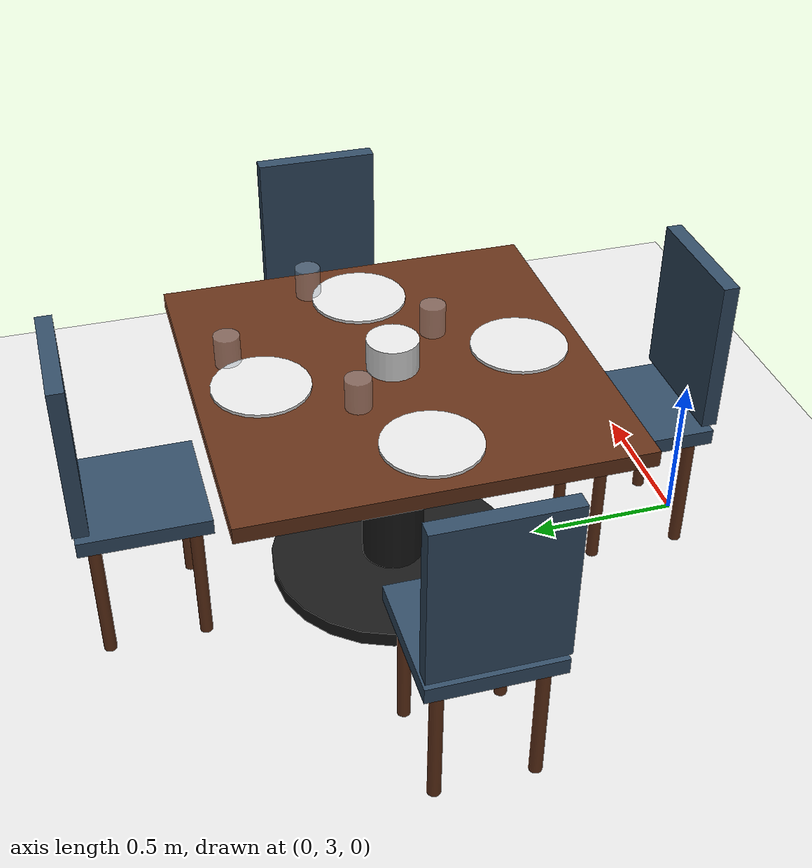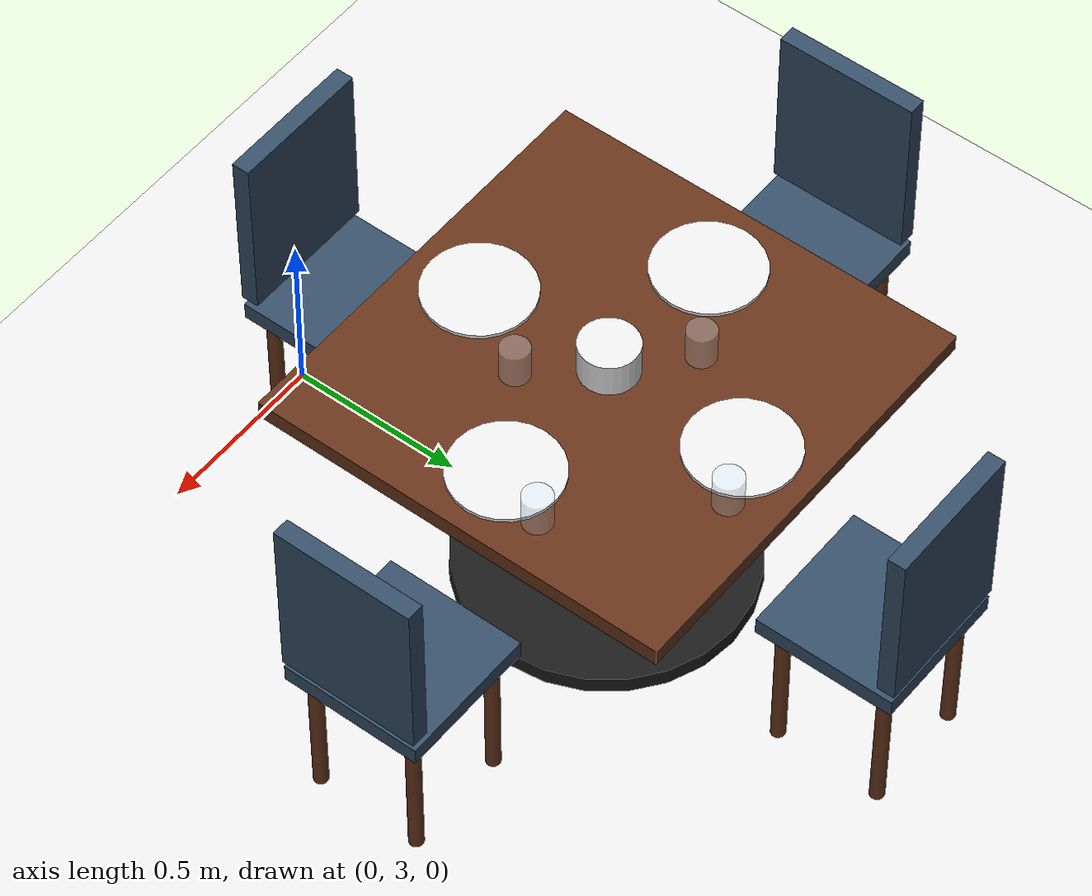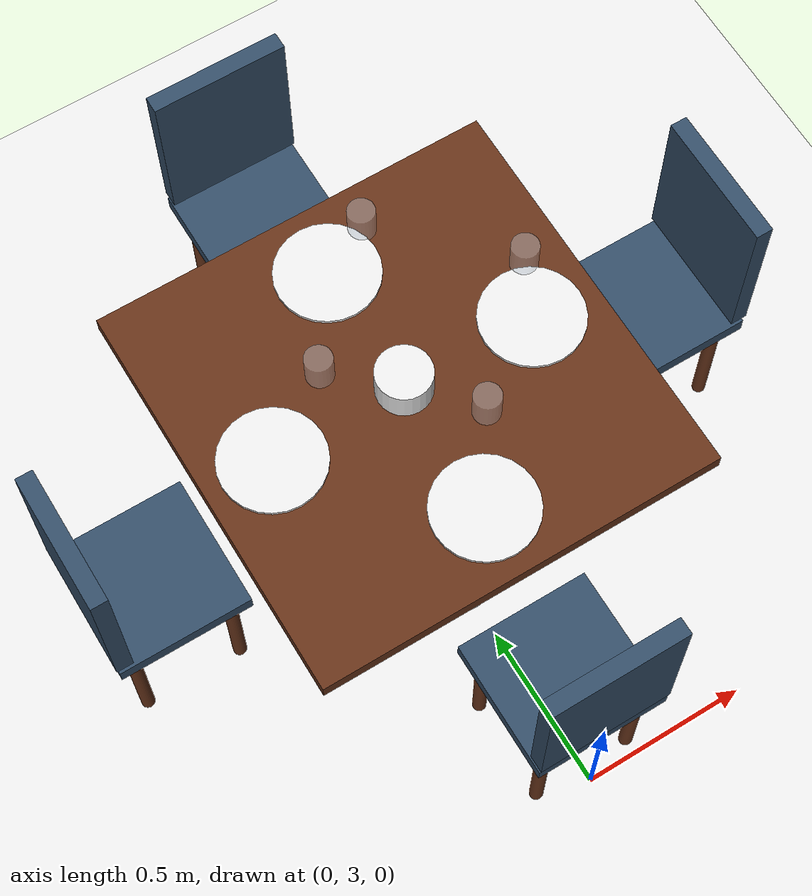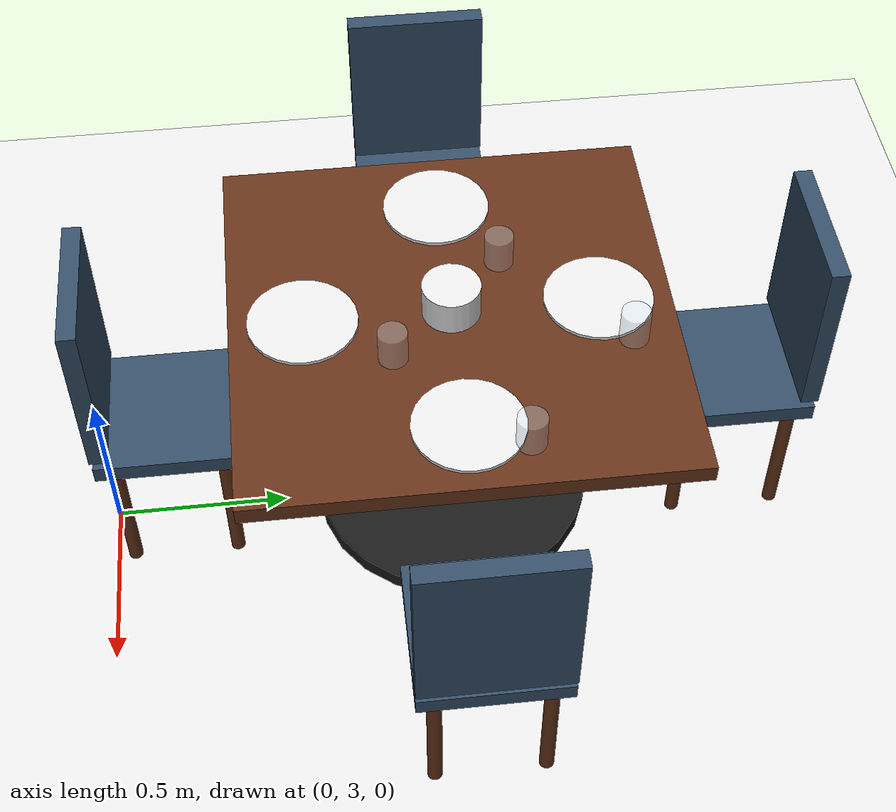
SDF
<sdf version="1.9">
 <world name="argo_restaurant">
  <model name="ground_plane">
   <static>true</static>
   <link name="link">
    <collision name="collision">
     <geometry><plane><normal>0 0 1</normal><size>100 100</size></plane></geometry>
    </collision>
    <visual name="visual">
     <geometry><plane><normal>0 0 1</normal><size>100 100</size></plane></geometry>
     <material>
      <ambient>0.9 0.9 0.9 1</ambient>
      <diffuse>0.9 0.9 0.9 1</diffuse>
      <specular>0.1 0.1 0.1 1</specular>
      <pbr><metal><roughness>0.1</roughness><metalness>0.0</metalness></metal></pbr>
     </material>
    </visual>
   </link>
  </model>
  <model name="table_7">
   <static>true</static>
   <link name="top_link">
    <pose>0.0 4.0 0.75 0 0 0</pose>
    <collision name="top_collision"><geometry><box><size>1.2 1.2 0.05</size></box></geometry></collision>
    <visual name="top_visual">
     <geometry><box><size>1.2 1.2 0.05</size></box></geometry>
     <material>
      <ambient>0.4 0.2 0.1 1</ambient>
      <diffuse>0.4 0.2 0.1 1</diffuse>
      <specular>0.1 0.1 0.1 1</specular>
      <pbr><metal><roughness>0.7</roughness><metalness>0.1</metalness></metal></pbr>
     </material>
    </visual>
   </link>
   <link name="leg_link">
    <pose>0.0 4.0 0.375 0 0 0</pose>
    <collision name="leg_collision">
     <geometry><cylinder><radius>0.1</radius><length>0.75</length></cylinder></geometry>
    </collision>
    <visual name="leg_visual">
     <geometry><cylinder><radius>0.1</radius><length>0.75</length></cylinder></geometry>
     <material>
      <ambient>0.1 0.1 0.1 1</ambient>
      <diffuse>0.1 0.1 0.1 1</diffuse>
      <specular>0.1 0.1 0.1 1</specular>
      <pbr><metal><roughness>0.5</roughness><metalness>0.0</metalness></metal></pbr>
     </material>
    </visual>
   </link>
   <link name="base_link">
    <pose>0.0 4.0 0.025 0 0 0</pose>
    <collision name="base_collision">
     <geometry><cylinder><radius>0.4</radius><length>0.05</length></cylinder></geometry>
    </collision>
    <visual name="base_visual">
     <geometry><cylinder><radius>0.4</radius><length>0.05</length></cylinder></geometry>
     <material>
      <ambient>0.1 0.1 0.1 1</ambient>
      <diffuse>0.1 0.1 0.1 1</diffuse>
      <specular>0.1 0.1 0.1 1</specular>
      <pbr><metal><roughness>0.5</roughness><metalness>0.0</metalness></metal></pbr>
     </material>
    </visual>
   </link>
   <link name="chair_0_seat_link">
    <pose>0.0 4.8 0.45 0 0 0</pose>
    <collision name="chair_0_seat_collision"><geometry><box><size>0.4 0.4 0.05</size></box></geometry></collision>
    <visual name="chair_0_seat_visual">
     <geometry><box><size>0.4 0.4 0.05</size></box></geometry>
     <material>
      <ambient>0.2 0.3 0.4 1</ambient>
      <diffuse>0.2 0.3 0.4 1</diffuse>
      <specular>0.1 0.1 0.1 1</specular>
      <pbr><metal><roughness>0.9</roughness><metalness>0.0</metalness></metal></pbr>
     </material>
    </visual>
   </link>
   <link name="chair_0_leg_-0.15_-0.15_link">
    <pose>-0.15 4.6499999999999995 0.225 0 0 0</pose>
    <collision name="chair_0_leg_-0.15_-0.15_collision">
     <geometry><cylinder><radius>0.02</radius><length>0.45</length></cylinder></geometry>
    </collision>
    <visual name="chair_0_leg_-0.15_-0.15_visual">
     <geometry><cylinder><radius>0.02</radius><length>0.45</length></cylinder></geometry>
     <material>
      <ambient>0.4 0.2 0.1 1</ambient>
      <diffuse>0.4 0.2 0.1 1</diffuse>
      <specular>0.1 0.1 0.1 1</specular>
      <pbr><metal><roughness>0.7</roughness><metalness>0.1</metalness></metal></pbr>
     </material>
    </visual>
   </link>
   <link name="chair_0_leg_0.15_-0.15_link">
    <pose>0.15 4.6499999999999995 0.225 0 0 0</pose>
    <collision name="chair_0_leg_0.15_-0.15_collision">
     <geometry><cylinder><radius>0.02</radius><length>0.45</length></cylinder></geometry>
    </collision>
    <visual name="chair_0_leg_0.15_-0.15_visual">
     <geometry><cylinder><radius>0.02</radius><length>0.45</length></cylinder></geometry>
     <material>
      <ambient>0.4 0.2 0.1 1</ambient>
      <diffuse>0.4 0.2 0.1 1</diffuse>
      <specular>0.1 0.1 0.1 1</specular>
      <pbr><metal><roughness>0.7</roughness><metalness>0.1</metalness></metal></pbr>
     </material>
    </visual>
   </link>
   <link name="chair_0_leg_-0.15_0.15_link">
    <pose>-0.15 4.95 0.225 0 0 0</pose>
    <collision name="chair_0_leg_-0.15_0.15_collision">
     <geometry><cylinder><radius>0.02</radius><length>0.45</length></cylinder></geometry>
    </collision>
    <visual name="chair_0_leg_-0.15_0.15_visual">
     <geometry><cylinder><radius>0.02</radius><length>0.45</length></cylinder></geometry>
     <material>
      <ambient>0.4 0.2 0.1 1</ambient>
      <diffuse>0.4 0.2 0.1 1</diffuse>
      <specular>0.1 0.1 0.1 1</specular>
      <pbr><metal><roughness>0.7</roughness><metalness>0.1</metalness></metal></pbr>
     </material>
    </visual>
   </link>
   <link name="chair_0_leg_0.15_0.15_link">
    <pose>0.15 4.95 0.225 0 0 0</pose>
    <collision name="chair_0_leg_0.15_0.15_collision">
     <geometry><cylinder><radius>0.02</radius><length>0.45</length></cylinder></geometry>
    </collision>
    <visual name="chair_0_leg_0.15_0.15_visual">
     <geometry><cylinder><radius>0.02</radius><length>0.45</length></cylinder></geometry>
     <material>
      <ambient>0.4 0.2 0.1 1</ambient>
      <diffuse>0.4 0.2 0.1 1</diffuse>
      <specular>0.1 0.1 0.1 1</specular>
      <pbr><metal><roughness>0.7</roughness><metalness>0.1</metalness></metal></pbr>
     </material>
    </visual>
   </link>
   <link name="chair_0_back_link">
    <pose>0.0 4.9799999999999995 0.75 0 0 0</pose>
    <collision name="chair_0_back_collision"><geometry><box><size>0.4 0.05 0.5</size></box></geometry></collision>
    <visual name="chair_0_back_visual">
     <geometry><box><size>0.4 0.05 0.5</size></box></geometry>
     <material>
      <ambient>0.2 0.3 0.4 1</ambient>
      <diffuse>0.2 0.3 0.4 1</diffuse>
      <specular>0.1 0.1 0.1 1</specular>
      <pbr><metal><roughness>0.9</roughness><metalness>0.0</metalness></metal></pbr>
     </material>
    </visual>
   </link>
   <link name="chair_1_seat_link">
    <pose>0.0 3.2 0.45 0 0 3.1415</pose>
    <collision name="chair_1_seat_collision"><geometry><box><size>0.4 0.4 0.05</size></box></geometry></collision>
    <visual name="chair_1_seat_visual">
     <geometry><box><size>0.4 0.4 0.05</size></box></geometry>
     <material>
      <ambient>0.2 0.3 0.4 1</ambient>
      <diffuse>0.2 0.3 0.4 1</diffuse>
      <specular>0.1 0.1 0.1 1</specular>
      <pbr><metal><roughness>0.9</roughness><metalness>0.0</metalness></metal></pbr>
     </material>
    </visual>
   </link>
   <link name="chair_1_leg_-0.15_-0.15_link">
    <pose>-0.15 3.0500000000000003 0.225 0 0 0</pose>
    <collision name="chair_1_leg_-0.15_-0.15_collision">
     <geometry><cylinder><radius>0.02</radius><length>0.45</length></cylinder></geometry>
    </collision>
    <visual name="chair_1_leg_-0.15_-0.15_visual">
     <geometry><cylinder><radius>0.02</radius><length>0.45</length></cylinder></geometry>
     <material>
      <ambient>0.4 0.2 0.1 1</ambient>
      <diffuse>0.4 0.2 0.1 1</diffuse>
      <specular>0.1 0.1 0.1 1</specular>
      <pbr><metal><roughness>0.7</roughness><metalness>0.1</metalness></metal></pbr>
     </material>
    </visual>
   </link>
   <link name="chair_1_leg_0.15_-0.15_link">
    <pose>0.15 3.0500000000000003 0.225 0 0 0</pose>
    <collision name="chair_1_leg_0.15_-0.15_collision">
     <geometry><cylinder><radius>0.02</radius><length>0.45</length></cylinder></geometry>
    </collision>
    <visual name="chair_1_leg_0.15_-0.15_visual">
     <geometry><cylinder><radius>0.02</radius><length>0.45</length></cylinder></geometry>
     <material>
      <ambient>0.4 0.2 0.1 1</ambient>
      <diffuse>0.4 0.2 0.1 1</diffuse>
      <specular>0.1 0.1 0.1 1</specular>
      <pbr><metal><roughness>0.7</roughness><metalness>0.1</metalness></metal></pbr>
     </material>
    </visual>
   </link>
   <link name="chair_1_leg_-0.15_0.15_link">
    <pose>-0.15 3.35 0.225 0 0 0</pose>
    <collision name="chair_1_leg_-0.15_0.15_collision">
     <geometry><cylinder><radius>0.02</radius><length>0.45</length></cylinder></geometry>
    </collision>
    <visual name="chair_1_leg_-0.15_0.15_visual">
     <geometry><cylinder><radius>0.02</radius><length>0.45</length></cylinder></geometry>
     <material>
      <ambient>0.4 0.2 0.1 1</ambient>
      <diffuse>0.4 0.2 0.1 1</diffuse>
      <specular>0.1 0.1 0.1 1</specular>
      <pbr><metal><roughness>0.7</roughness><metalness>0.1</metalness></metal></pbr>
     </material>
    </visual>
   </link>
   <link name="chair_1_leg_0.15_0.15_link">
    <pose>0.15 3.35 0.225 0 0 0</pose>
    <collision name="chair_1_leg_0.15_0.15_collision">
     <geometry><cylinder><radius>0.02</radius><length>0.45</length></cylinder></geometry>
    </collision>
    <visual name="chair_1_leg_0.15_0.15_visual">
     <geometry><cylinder><radius>0.02</radius><length>0.45</length></cylinder></geometry>
     <material>
      <ambient>0.4 0.2 0.1 1</ambient>
      <diffuse>0.4 0.2 0.1 1</diffuse>
      <specular>0.1 0.1 0.1 1</specular>
      <pbr><metal><roughness>0.7</roughness><metalness>0.1</metalness></metal></pbr>
     </material>
    </visual>
   </link>
   <link name="chair_1_back_link">
    <pose>-1.6677646138888247e-05 3.020000000772622 0.75 0 0 3.1415</pose>
    <collision name="chair_1_back_collision"><geometry><box><size>0.4 0.05 0.5</size></box></geometry></collision>
    <visual name="chair_1_back_visual">
     <geometry><box><size>0.4 0.05 0.5</size></box></geometry>
     <material>
      <ambient>0.2 0.3 0.4 1</ambient>
      <diffuse>0.2 0.3 0.4 1</diffuse>
      <specular>0.1 0.1 0.1 1</specular>
      <pbr><metal><roughness>0.9</roughness><metalness>0.0</metalness></metal></pbr>
     </material>
    </visual>
   </link>
   <link name="chair_2_seat_link">
    <pose>0.8 4.0 0.45 0 0 -1.5707</pose>
    <collision name="chair_2_seat_collision"><geometry><box><size>0.4 0.4 0.05</size></box></geometry></collision>
    <visual name="chair_2_seat_visual">
     <geometry><box><size>0.4 0.4 0.05</size></box></geometry>
     <material>
      <ambient>0.2 0.3 0.4 1</ambient>
      <diffuse>0.2 0.3 0.4 1</diffuse>
      <specular>0.1 0.1 0.1 1</specular>
      <pbr><metal><roughness>0.9</roughness><metalness>0.0</metalness></metal></pbr>
     </material>
    </visual>
   </link>
   <link name="chair_2_leg_-0.15_-0.15_link">
    <pose>0.65 3.85 0.225 0 0 0</pose>
    <collision name="chair_2_leg_-0.15_-0.15_collision">
     <geometry><cylinder><radius>0.02</radius><length>0.45</length></cylinder></geometry>
    </collision>
    <visual name="chair_2_leg_-0.15_-0.15_visual">
     <geometry><cylinder><radius>0.02</radius><length>0.45</length></cylinder></geometry>
     <material>
      <ambient>0.4 0.2 0.1 1</ambient>
      <diffuse>0.4 0.2 0.1 1</diffuse>
      <specular>0.1 0.1 0.1 1</specular>
      <pbr><metal><roughness>0.7</roughness><metalness>0.1</metalness></metal></pbr>
     </material>
    </visual>
   </link>
   <link name="chair_2_leg_0.15_-0.15_link">
    <pose>0.9500000000000001 3.85 0.225 0 0 0</pose>
    <collision name="chair_2_leg_0.15_-0.15_collision">
     <geometry><cylinder><radius>0.02</radius><length>0.45</length></cylinder></geometry>
    </collision>
    <visual name="chair_2_leg_0.15_-0.15_visual">
     <geometry><cylinder><radius>0.02</radius><length>0.45</length></cylinder></geometry>
     <material>
      <ambient>0.4 0.2 0.1 1</ambient>
      <diffuse>0.4 0.2 0.1 1</diffuse>
      <specular>0.1 0.1 0.1 1</specular>
      <pbr><metal><roughness>0.7</roughness><metalness>0.1</metalness></metal></pbr>
     </material>
    </visual>
   </link>
   <link name="chair_2_leg_-0.15_0.15_link">
    <pose>0.65 4.15 0.225 0 0 0</pose>
    <collision name="chair_2_leg_-0.15_0.15_collision">
     <geometry><cylinder><radius>0.02</radius><length>0.45</length></cylinder></geometry>
    </collision>
    <visual name="chair_2_leg_-0.15_0.15_visual">
     <geometry><cylinder><radius>0.02</radius><length>0.45</length></cylinder></geometry>
     <material>
      <ambient>0.4 0.2 0.1 1</ambient>
      <diffuse>0.4 0.2 0.1 1</diffuse>
      <specular>0.1 0.1 0.1 1</specular>
      <pbr><metal><roughness>0.7</roughness><metalness>0.1</metalness></metal></pbr>
     </material>
    </visual>
   </link>
   <link name="chair_2_leg_0.15_0.15_link">
    <pose>0.9500000000000001 4.15 0.225 0 0 0</pose>
    <collision name="chair_2_leg_0.15_0.15_collision">
     <geometry><cylinder><radius>0.02</radius><length>0.45</length></cylinder></geometry>
    </collision>
    <visual name="chair_2_leg_0.15_0.15_visual">
     <geometry><cylinder><radius>0.02</radius><length>0.45</length></cylinder></geometry>
     <material>
      <ambient>0.4 0.2 0.1 1</ambient>
      <diffuse>0.4 0.2 0.1 1</diffuse>
      <specular>0.1 0.1 0.1 1</specular>
      <pbr><metal><roughness>0.7</roughness><metalness>0.1</metalness></metal></pbr>
     </material>
    </visual>
   </link>
   <link name="chair_2_back_link">
    <pose>0.9799999991649034 4.000017338823055 0.75 0 0 -1.5707</pose>
    <collision name="chair_2_back_collision"><geometry><box><size>0.4 0.05 0.5</size></box></geometry></collision>
    <visual name="chair_2_back_visual">
     <geometry><box><size>0.4 0.05 0.5</size></box></geometry>
     <material>
      <ambient>0.2 0.3 0.4 1</ambient>
      <diffuse>0.2 0.3 0.4 1</diffuse>
      <specular>0.1 0.1 0.1 1</specular>
      <pbr><metal><roughness>0.9</roughness><metalness>0.0</metalness></metal></pbr>
     </material>
    </visual>
   </link>
   <link name="chair_3_seat_link">
    <pose>-0.8 4.0 0.45 0 0 1.5707</pose>
    <collision name="chair_3_seat_collision"><geometry><box><size>0.4 0.4 0.05</size></box></geometry></collision>
    <visual name="chair_3_seat_visual">
     <geometry><box><size>0.4 0.4 0.05</size></box></geometry>
     <material>
      <ambient>0.2 0.3 0.4 1</ambient>
      <diffuse>0.2 0.3 0.4 1</diffuse>
      <specular>0.1 0.1 0.1 1</specular>
      <pbr><metal><roughness>0.9</roughness><metalness>0.0</metalness></metal></pbr>
     </material>
    </visual>
   </link>
   <link name="chair_3_leg_-0.15_-0.15_link">
    <pose>-0.9500000000000001 3.85 0.225 0 0 0</pose>
    <collision name="chair_3_leg_-0.15_-0.15_collision">
     <geometry><cylinder><radius>0.02</radius><length>0.45</length></cylinder></geometry>
    </collision>
    <visual name="chair_3_leg_-0.15_-0.15_visual">
     <geometry><cylinder><radius>0.02</radius><length>0.45</length></cylinder></geometry>
     <material>
      <ambient>0.4 0.2 0.1 1</ambient>
      <diffuse>0.4 0.2 0.1 1</diffuse>
      <specular>0.1 0.1 0.1 1</specular>
      <pbr><metal><roughness>0.7</roughness><metalness>0.1</metalness></metal></pbr>
     </material>
    </visual>
   </link>
   <link name="chair_3_leg_0.15_-0.15_link">
    <pose>-0.65 3.85 0.225 0 0 0</pose>
    <collision name="chair_3_leg_0.15_-0.15_collision">
     <geometry><cylinder><radius>0.02</radius><length>0.45</length></cylinder></geometry>
    </collision>
    <visual name="chair_3_leg_0.15_-0.15_visual">
     <geometry><cylinder><radius>0.02</radius><length>0.45</length></cylinder></geometry>
     <material>
      <ambient>0.4 0.2 0.1 1</ambient>
      <diffuse>0.4 0.2 0.1 1</diffuse>
      <specular>0.1 0.1 0.1 1</specular>
      <pbr><metal><roughness>0.7</roughness><metalness>0.1</metalness></metal></pbr>
     </material>
    </visual>
   </link>
   <link name="chair_3_leg_-0.15_0.15_link">
    <pose>-0.9500000000000001 4.15 0.225 0 0 0</pose>
    <collision name="chair_3_leg_-0.15_0.15_collision">
     <geometry><cylinder><radius>0.02</radius><length>0.45</length></cylinder></geometry>
    </collision>
    <visual name="chair_3_leg_-0.15_0.15_visual">
     <geometry><cylinder><radius>0.02</radius><length>0.45</length></cylinder></geometry>
     <material>
      <ambient>0.4 0.2 0.1 1</ambient>
      <diffuse>0.4 0.2 0.1 1</diffuse>
      <specular>0.1 0.1 0.1 1</specular>
      <pbr><metal><roughness>0.7</roughness><metalness>0.1</metalness></metal></pbr>
     </material>
    </visual>
   </link>
   <link name="chair_3_leg_0.15_0.15_link">
    <pose>-0.65 4.15 0.225 0 0 0</pose>
    <collision name="chair_3_leg_0.15_0.15_collision">
     <geometry><cylinder><radius>0.02</radius><length>0.45</length></cylinder></geometry>
    </collision>
    <visual name="chair_3_leg_0.15_0.15_visual">
     <geometry><cylinder><radius>0.02</radius><length>0.45</length></cylinder></geometry>
     <material>
      <ambient>0.4 0.2 0.1 1</ambient>
      <diffuse>0.4 0.2 0.1 1</diffuse>
      <specular>0.1 0.1 0.1 1</specular>
      <pbr><metal><roughness>0.7</roughness><metalness>0.1</metalness></metal></pbr>
     </material>
    </visual>
   </link>
   <link name="chair_3_back_link">
    <pose>-0.9799999991649034 4.000017338823055 0.75 0 0 1.5707</pose>
    <collision name="chair_3_back_collision"><geometry><box><size>0.4 0.05 0.5</size></box></geometry></collision>
    <visual name="chair_3_back_visual">
     <geometry><box><size>0.4 0.05 0.5</size></box></geometry>
     <material>
      <ambient>0.2 0.3 0.4 1</ambient>
      <diffuse>0.2 0.3 0.4 1</diffuse>
      <specular>0.1 0.1 0.1 1</specular>
      <pbr><metal><roughness>0.9</roughness><metalness>0.0</metalness></metal></pbr>
     </material>
    </visual>
   </link>
   <link name="centerpiece_pot_link">
    <pose>0.0 4.0 0.825 0 0 0</pose>
    <collision name="centerpiece_pot_collision">
     <geometry><cylinder><radius>0.08</radius><length>0.1</length></cylinder></geometry>
    </collision>
    <visual name="centerpiece_pot_visual">
     <geometry><cylinder><radius>0.08</radius><length>0.1</length></cylinder></geometry>
     <material>
      <ambient>0.9 0.9 0.9 1</ambient>
      <diffuse>0.9 0.9 0.9 1</diffuse>
      <specular>0.1 0.1 0.1 1</specular>
      <pbr><metal><roughness>0.2</roughness><metalness>0.0</metalness></metal></pbr>
     </material>
    </visual>
   </link>
   <link name="plate_0_link">
    <pose>0.0 4.4 0.78 0 0 0</pose>
    <collision name="plate_0_collision">
     <geometry><cylinder><radius>0.15</radius><length>0.01</length></cylinder></geometry>
    </collision>
    <visual name="plate_0_visual">
     <geometry><cylinder><radius>0.15</radius><length>0.01</length></cylinder></geometry>
     <material>
      <ambient>0.9 0.9 0.9 1</ambient>
      <diffuse>0.9 0.9 0.9 1</diffuse>
      <specular>0.1 0.1 0.1 1</specular>
      <pbr><metal><roughness>0.2</roughness><metalness>0.0</metalness></metal></pbr>
     </material>
    </visual>
   </link>
   <link name="glass_0_link">
    <pose>0.15 4.47 0.825 0 0 0</pose>
    <collision name="glass_0_collision">
     <geometry><cylinder><radius>0.04</radius><length>0.1</length></cylinder></geometry>
    </collision>
    <visual name="glass_0_visual">
     <geometry><cylinder><radius>0.04</radius><length>0.1</length></cylinder></geometry>
     <material>
      <ambient>0.8 0.9 1.0 0.3</ambient>
      <diffuse>0.8 0.9 1.0 0.3</diffuse>
      <specular>0.9 0.9 0.9 1</specular>
      <pbr><metal><roughness>0.0</roughness><metalness>0.9</metalness></metal></pbr>
     </material>
    </visual>
   </link>
   <link name="plate_1_link">
    <pose>0.0 3.6 0.78 0 0 0</pose>
    <collision name="plate_1_collision">
     <geometry><cylinder><radius>0.15</radius><length>0.01</length></cylinder></geometry>
    </collision>
    <visual name="plate_1_visual">
     <geometry><cylinder><radius>0.15</radius><length>0.01</length></cylinder></geometry>
     <material>
      <ambient>0.9 0.9 0.9 1</ambient>
      <diffuse>0.9 0.9 0.9 1</diffuse>
      <specular>0.1 0.1 0.1 1</specular>
      <pbr><metal><roughness>0.2</roughness><metalness>0.0</metalness></metal></pbr>
     </material>
    </visual>
   </link>
   <link name="glass_1_link">
    <pose>0.15 3.83 0.825 0 0 0</pose>
    <collision name="glass_1_collision">
     <geometry><cylinder><radius>0.04</radius><length>0.1</length></cylinder></geometry>
    </collision>
    <visual name="glass_1_visual">
     <geometry><cylinder><radius>0.04</radius><length>0.1</length></cylinder></geometry>
     <material>
      <ambient>0.8 0.9 1.0 0.3</ambient>
      <diffuse>0.8 0.9 1.0 0.3</diffuse>
      <specular>0.9 0.9 0.9 1</specular>
      <pbr><metal><roughness>0.0</roughness><metalness>0.9</metalness></metal></pbr>
     </material>
    </visual>
   </link>
   <link name="plate_2_link">
    <pose>0.4 4.0 0.78 0 0 0</pose>
    <collision name="plate_2_collision">
     <geometry><cylinder><radius>0.15</radius><length>0.01</length></cylinder></geometry>
    </collision>
    <visual name="plate_2_visual">
     <geometry><cylinder><radius>0.15</radius><length>0.01</length></cylinder></geometry>
     <material>
      <ambient>0.9 0.9 0.9 1</ambient>
      <diffuse>0.9 0.9 0.9 1</diffuse>
      <specular>0.1 0.1 0.1 1</specular>
      <pbr><metal><roughness>0.2</roughness><metalness>0.0</metalness></metal></pbr>
     </material>
    </visual>
   </link>
   <link name="glass_2_link">
    <pose>0.4700000000000001 4.15 0.825 0 0 0</pose>
    <collision name="glass_2_collision">
     <geometry><cylinder><radius>0.04</radius><length>0.1</length></cylinder></geometry>
    </collision>
    <visual name="glass_2_visual">
     <geometry><cylinder><radius>0.04</radius><length>0.1</length></cylinder></geometry>
     <material>
      <ambient>0.8 0.9 1.0 0.3</ambient>
      <diffuse>0.8 0.9 1.0 0.3</diffuse>
      <specular>0.9 0.9 0.9 1</specular>
      <pbr><metal><roughness>0.0</roughness><metalness>0.9</metalness></metal></pbr>
     </material>
    </visual>
   </link>
   <link name="plate_3_link">
    <pose>-0.4 4.0 0.78 0 0 0</pose>
    <collision name="plate_3_collision">
     <geometry><cylinder><radius>0.15</radius><length>0.01</length></cylinder></geometry>
    </collision>
    <visual name="plate_3_visual">
     <geometry><cylinder><radius>0.15</radius><length>0.01</length></cylinder></geometry>
     <material>
      <ambient>0.9 0.9 0.9 1</ambient>
      <diffuse>0.9 0.9 0.9 1</diffuse>
      <specular>0.1 0.1 0.1 1</specular>
      <pbr><metal><roughness>0.2</roughness><metalness>0.0</metalness></metal></pbr>
     </material>
    </visual>
   </link>
   <link name="glass_3_link">
    <pose>-0.17000000000000007 4.15 0.825 0 0 0</pose>
    <collision name="glass_3_collision">
     <geometry><cylinder><radius>0.04</radius><length>0.1</length></cylinder></geometry>
    </collision>
    <visual name="glass_3_visual">
     <geometry><cylinder><radius>0.04</radius><length>0.1</length></cylinder></geometry>
     <material>
      <ambient>0.8 0.9 1.0 0.3</ambient>
      <diffuse>0.8 0.9 1.0 0.3</diffuse>
      <specular>0.9 0.9 0.9 1</specular>
      <pbr><metal><roughness>0.0</roughness><metalness>0.9</metalness></metal></pbr>
     </material>
    </visual>
   </link>
  </model>
 </world>
</sdf>
